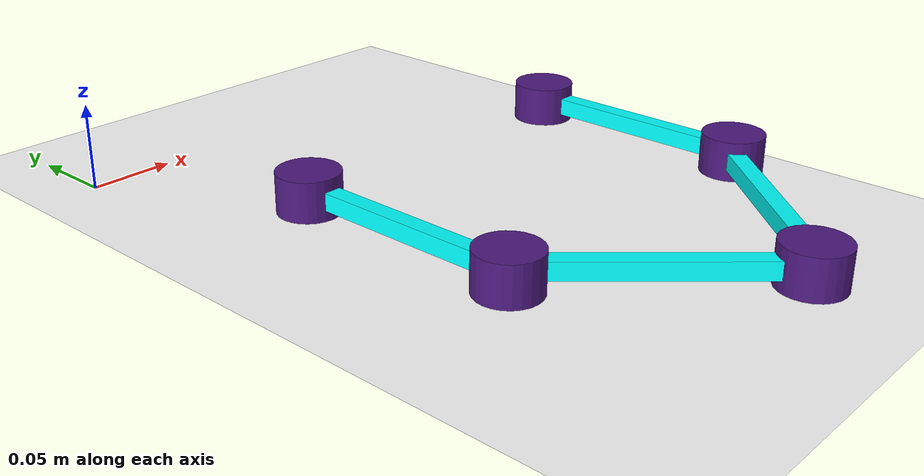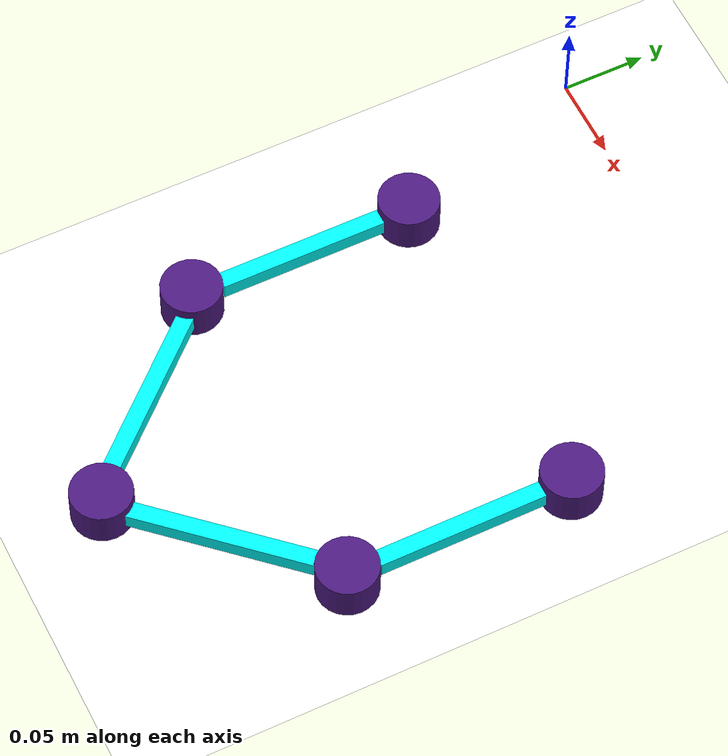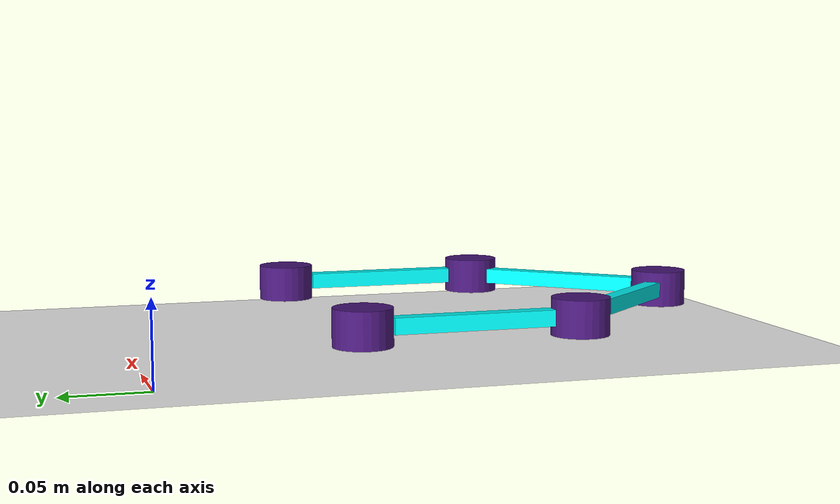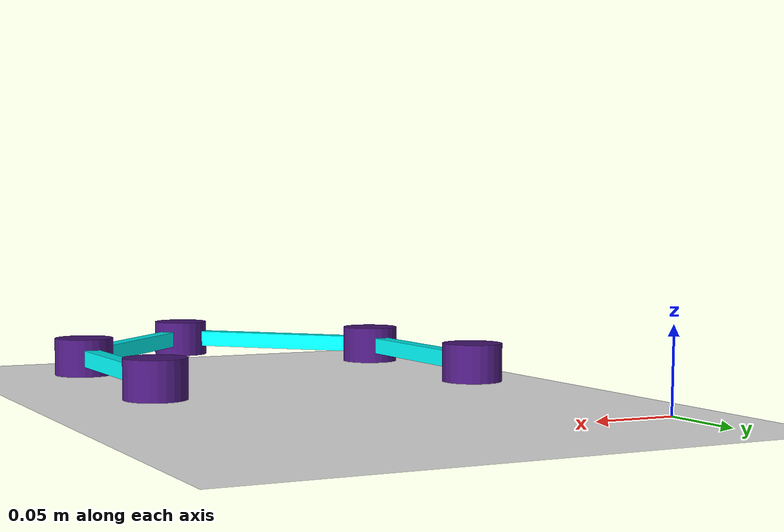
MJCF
<mujoco model="parallel">
    <visual>
        <headlight ambient="0.5 0.5 0.5" />
    </visual>

    <option gravity="0 0 -9.81" />

     <actuator>
        <motor gear="100" joint="joint_yaw_l" name="yaw_actuator_left" ctrlrange="-.02 .02" ctrllimited="true"/>
        <motor gear="100" joint="joint_yaw_r" name="yaw_actuator_right" ctrlrange="-.02 .02" ctrllimited="true"/>
    </actuator>

    <worldbody>
        <light name="overhead_light" pos="0 0 1"/>
        <geom type="plane" pos="0 0 0" size="1 1 0.1" rgba="20 216 146 0.8"/>

        <body name="fixed_actiator_left" euler="90 0 0">
            <geom type="cylinder" fromto="0.05 .0315 0.128 0.05 .0085 0.128" size=".018" mass="0.065" rgba="0.3 0.1 0.5 1"/>
            <joint name="joint_yaw_l" pos="0.05 0.02 0.128" axis="0 1 0" />
            <body name="linkage_2_left" euler="0 0 0">
                <geom name="linkage2_l" type="box" pos="0.05 0.02 0.196" size=".005 .005 .05" mass="0.02" rgba="0 1 1 1"/>
                <body name="actuator1_left" euler="0 0 0">
                    <geom type="cylinder" fromto="0.05 .0315 0.264 0.05 .0085 0.264" size=".018" mass="0.065" rgba="0.3 0.1 0.5 1"/>
                    <joint name="joint_pitch_l" pos="0.05 0.02 0.264" axis="0 1 0" />
                    <body name="linkage_1_left" euler="0 0 0">
                        <geom name="linkage1_l" type="box" pos="0.10 0.02 0.314" size=".005 .005 .068" mass="0.02" axisangle="0 1 0 42.67" rgba="0 1 1 1"/>
                        <body name="actuator_center_left" euler="0 0 0">
                             <geom type="cylinder" fromto="0.15 .0315 0.364 0.15 .0085 0.364" size=".018" mass="0.065" rgba="0.3 0.1 0.5 1"/>
                             <joint name="joint_roll_l" pos="0.15 0.02 0.364" axis="0 1 0" />
                         </body>
                    </body>
                </body>
            </body>
        </body>

        <body name="fixed_actiator_right" euler="90 0 0">
            <geom type="cylinder" fromto="0.25 .0315 0.128 0.25 .0085 0.128" size=".018" mass="0.065" rgba="0.3 0.1 0.5 1"/>
            <joint name="joint_yaw_r" pos="0.25 0.02 0.128" axis="0 1 0" />
            <body name="linkage_2_right" euler="0 0 0">
                <geom name="linkage2_r" type="box" pos="0.25 0.02 0.196" size=".005 .005 .05" mass="0.02" rgba="0 1 1 1"/>
                <body name="actuator1_right" euler="0 0 0">
                    <geom type="cylinder" fromto="0.25 .0315 0.264 0.25 .0085 0.264" size=".018" mass="0.065" rgba="0.3 0.1 0.5 1"/>
                    <joint name="joint_pitch_r" pos="0.25 0.02 0.264" axis="0 1 0" />
                     <body name="linkage_1_right" euler="0 0 0">
                         <geom name="linkage1_r" type="box" pos="0.20 0.02 0.314" size=".005 .005 .068" mass="0.02" axisangle="0 1 0 -42.67" rgba="0 1 1 1"/>
                         <body name="actuator_center_right" euler="0 0 0">
                             <geom type="cylinder" fromto="0.15 .0315 0.364 0.15 .0085 0.364" size=".018" mass="0.065" rgba="0.3 0.1 0.5 1"/>
                             <joint name="joint_roll_r" pos="0.15 0.02 0.364" axis="0 1 0" />
                         </body>
                    </body>
                </body>
            </body>
        </body>
    </worldbody>

    <contact>
        <exclude body1="actuator_center_left" body2="actuator_center_right"/>
    </contact>

    <equality>
        <connect name="linkage_constraint" active="true" body1="actuator_center_left" body2="actuator_center_right" anchor="0.15 -0.02 0.364" />
    </equality>

</mujoco>

<!-- fromto="0.05 .0315 0.128 0.05 .0085 0.128", the cylinder starts at (0.05, -0.0315, 0.128) and ends at (0.05, -0.0085, 0.128). -->
